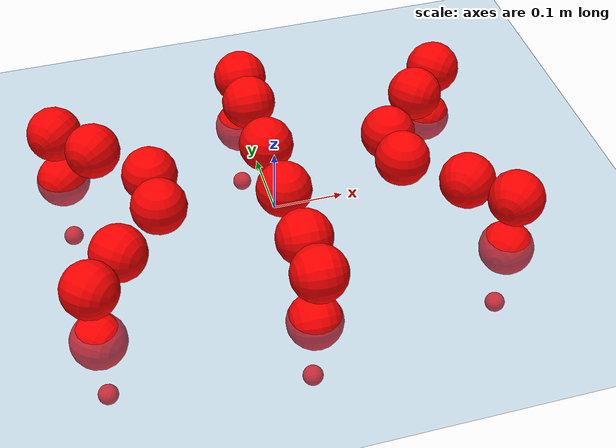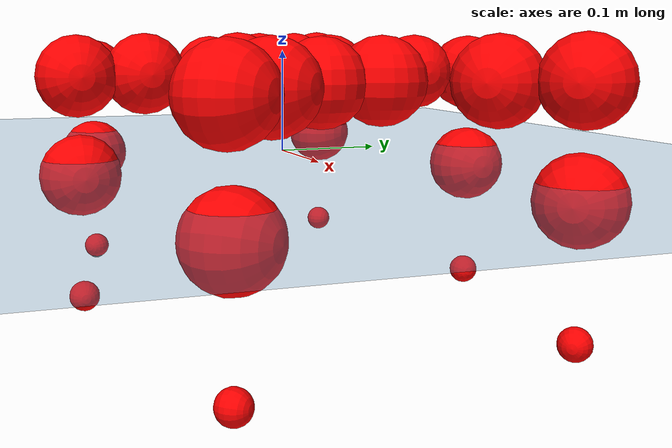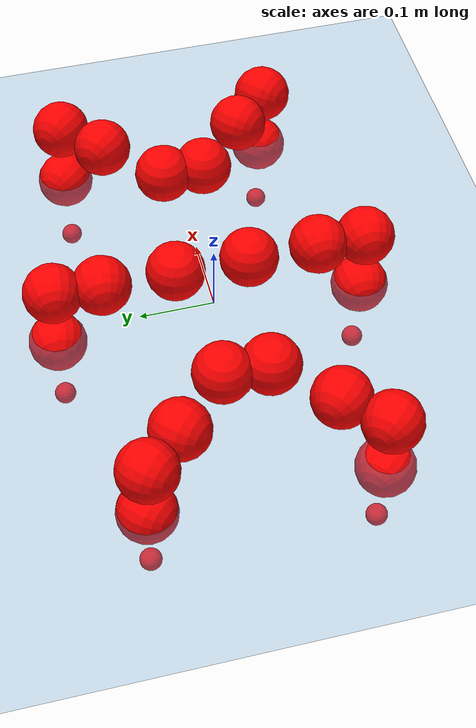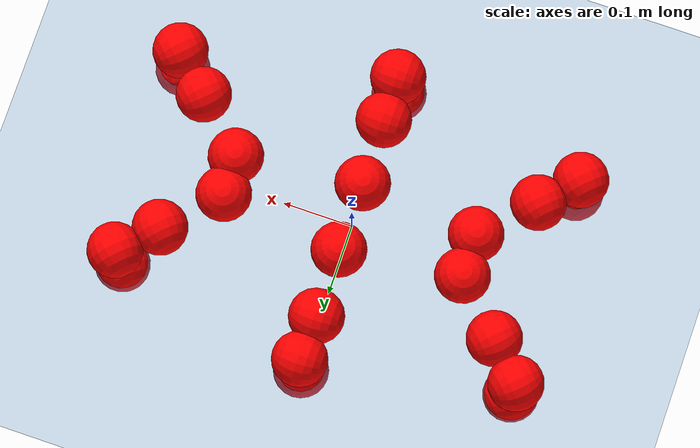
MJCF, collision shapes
<mujoco model="Golem">
  <compiler angle="radian" assetdir="assets" balanceinertia="true" inertiafromgeom="false"/>

  <option timestep="0.005" density="1.2" viscosity="2e-05"/>

  <size nkey="1"/>

  <visual>
    <quality shadowsize="8192"/>
    <map shadowclip="0.5"/>
  </visual>

  <default>
    <default class="/">
      <joint armature="0.01" damping="0.01" frictionloss="0.01"/>
      <geom contype="0" conaffinity="0" group="1" solref="-1000 -80"/>
      <site size="0.01 0.005 0.005" group="5"/>
      <general forcelimited="true" biastype="affine" gainprm="25" biasprm="0 -25 -0.5"/>
      <default class="visual">
        <geom type="mesh" group="2"/>
      </default>
      <default class="collision">
        <geom group="3"/>
      </default>
      <default class="foot">
        <geom size="0.01 0 0" condim="6" group="4" priority="1" solimp="0.015 1 0.01"/>
      </default>
      <default class="reward_collision_sphere">
        <geom group="5" rgba="1 0 0 1"/>
      </default>
    </default>
  </default>

  <asset>
    <texture type="skybox" colorspace="auto" name="//unnamed_texture_0" builtin="gradient" rgb1="0.95 0.95 0.95" rgb2="0.95 0.95 0.95" width="100" height="600"/>
    <texture type="2d" colorspace="auto" name="texplane" builtin="checker" rgb1="0.345 0.575 0.748" rgb2="0.345 0.575 0.748" markrgb="1 1 1" width="512" height="512"/>
    <material name="MatPlane" class="/" texture="texplane" texuniform="true" texrepeat="2 2" specular="0.9"/>
    <mesh name="body" class="/" file="body.stl" scale="0.001 0.001 0.001"/>
    <mesh name="coxa" class="/" file="coxa.stl" scale="0.001 0.001 0.001"/>
    <mesh name="femur" class="/" file="femur.stl" scale="0.001 0.001 0.001"/>
    <mesh name="tibia" class="/" file="tibia.stl" scale="0.001 0.001 0.001"/>
    <mesh name="tarsus" class="/" file="tarsus.stl" scale="0.001 0.001 0.001"/>
  </asset>

  <worldbody>
    <geom name="floor" class="/" size="100 100 0.125" type="plane" group="0" material="MatPlane"/>
    <light name="toplight_shadow" class="/" pos="0 0 5" dir="0.0990148 0.0990148 -0.990148" type="directional" ambient="0.04 0.04 0.04" diffuse="0.55 0.55 0.55" specular="0.12 0.12 0.12"/>
    <light name="toplight_fill" class="/" pos="0 0 5" dir="0.0990148 0.0990148 -0.990148" type="directional" castshadow="false" ambient="0.04 0.04 0.04" diffuse="0.3 0.3 0.3" specular="0.08 0.08 0.08"/>
    <body name="trunk" pos="0.00270216 -0.000767685 0.00191182" quat="1 0.000344055 -0.000187481 -0.000151446">
      <inertial pos="-0.00203663 -0.00228781 0.00123247" quat="0.999997 0.000461426 -0.000378816 -0.00237636" mass="3.36827" diaginertia="0.0154623 0.0008948 0.0242387"/>
      <joint name="//unnamed_joint_0" type="free"/>
      <geom name="//unnamed_geom_1" class="/" pos="0 0 0.076015" quat="1 0 0 0" type="mesh" rgba="0.9 0.9 0.9 1" mesh="body"/>
      <site name="imu" class="/" pos="0.136908 -0.007916 0.11373" size="0.00967253"/>
      <camera name="track" class="/" pos="0 -1.23588 0" quat="0.707107 0.707107 0 0" mode="trackcom"/>
      <camera name="ego_camera" class="/" pos="0.142491 0 0.118773" quat="-0.5 -0.5 0.5 0.5"/>
      <body name="coxa_RR" pos="-0.193448 -0.0534494 0.074504" quat="0.382724 0.00013531 -9.4211e-05 -0.923863">
        <inertial pos="-4.92401e-06 0.0018926 -0.00134423" quat="0.999935 -0.00898862 0.00677178 0.0019878" mass="0.183886" diaginertia="0.0161884 0.000880251 0.0236189"/>
        <joint name="coxa_joint_RR" class="/" pos="0 0 0" axis="-0.000144136 0.00133311 -0.999999" stiffness="0.00148257" range="-3.12326 3.14702" armature="0.00972321" damping="0.0172296" frictionloss="0.00889261"/>
        <geom name="//unnamed_geom_2" class="/" type="mesh" rgba="0.2 0.2 0.2 1" mesh="coxa"/>
        <geom name="//unnamed_geom_3" class="reward_collision_sphere" size="0.0386901" pos="-0.0328825 0 0"/>
        <body name="femur_RR" pos="0.0629686 0.00197952 -0.000707042" quat="0.500175 -0.499988 0.500111 0.499725">
          <inertial pos="-0.000763136 0.00145024 -0.00225527" quat="0.999999 -0.00106758 0.000481324 -0.000509187" mass="0.180429" diaginertia="0.0157569 0.000893051 0.0234765"/>
          <joint name="femur_joint_RR" class="/" pos="0 0 0" axis="0.000152585 -0.000411093 -1" range="-3.16973 3.17975" armature="0.00905221" damping="0.00723834" frictionloss="0.00947604"/>
          <geom name="//unnamed_geom_4" class="/" type="mesh" rgba="0.9 0.9 0.9 1" mesh="femur"/>
          <geom name="//unnamed_geom_5" class="reward_collision_sphere" size="0.0386901"/>
          <body name="tibia_RR" pos="0.00337312 -0.0666276 0.00294851" quat="0.000372911 1 -0.000296058 -5.8101e-05">
            <inertial pos="0.00222181 -0.000995932 0.0022387" quat="0.999942 -0.00935396 0.00524652 0.000328171" mass="0.184502" diaginertia="0.0164362 0.000933262 0.023627"/>
            <joint name="tibia_joint_RR" class="/" pos="0 0 0" axis="0.00610638 -0.000183521 0.999981" range="-3.18854 3.19603" armature="0.00859355" damping="0.0155158" frictionloss="0.0105092"/>
            <geom name="//unnamed_geom_6" class="/" type="mesh" rgba="0.2 0.2 0.2 1" mesh="tibia"/>
            <geom name="//unnamed_geom_7" class="reward_collision_sphere" size="0.0386901"/>
            <body name="tarsus_RR" pos="0.0995033 0.000664855 -0.000929021" quat="1 -6.11606e-05 0.000116973 -0.000388997">
              <inertial pos="0.0671825 -0.00263188 -0.000136237" quat="0.502628 0.499709 0.490449 0.507067" mass="0.174791" diaginertia="0.0152393 0.000891406 0.0234356"/>
              <joint name="tarsus_joint_RR" class="/" pos="0 0 0" axis="-0.00275216 0.000227779 0.999996" range="-3.17242 3.12558" armature="0.0109994" damping="0.0423004" frictionloss="0.0107824"/>
              <geom name="//unnamed_geom_8" class="/" type="mesh" rgba="0.9 0.9 0.9 1" mesh="tarsus"/>
              <geom name="foot_1" class="foot" size="0.0104628" pos="0.122761 0 0" quat="0 -0.707107 0 0.707107"/>
              <geom name="//unnamed_geom_10" class="reward_collision_sphere" size="0.0386901"/>
              <geom name="//unnamed_geom_11" class="reward_collision_sphere" size="0.0145088" pos="0.117829 0 0"/>
              <site name="foot_1" class="foot" pos="0.122761 0 0" quat="0 -0.707107 0 0.707107" size="0.00967253"/>
            </body>
          </body>
        </body>
      </body>
      <body name="coxa_RM" pos="-0.00192827 -0.0791839 0.078065" quat="0.706978 -0.000118797 -0.000298288 -0.707235">
        <inertial pos="-0.000860349 0.00259266 0.00308793" quat="0.999996 0.000155862 0.00248835 -0.00148007" mass="0.183227" diaginertia="0.0163599 0.000934834 0.0243231"/>
        <joint name="coxa_joint_RM" class="/" pos="0 0 0" axis="0.00951417 -0.00237111 -0.999952" stiffness="0.00946348" range="-3.18345 3.08463" armature="0.010193" damping="0.0325933" frictionloss="0.0108625"/>
        <geom name="//unnamed_geom_12" class="/" type="mesh" rgba="0.2 0.2 0.2 1" mesh="coxa"/>
        <geom name="//unnamed_geom_13" class="reward_collision_sphere" size="0.0386901" pos="-0.0328825 0 0"/>
        <body name="femur_RM" pos="0.0600129 0.00132706 -0.000741162" quat="0.499462 -0.49976 0.500708 0.500069">
          <inertial pos="0.00095036 -0.00236747 0.00073511" quat="0.999923 -0.00788485 -0.00915496 0.00270014" mass="0.177794" diaginertia="0.0157992 0.000859946 0.0235467"/>
          <joint name="femur_joint_RM" class="/" pos="0 0 0" axis="-0.0116033 0.00595673 -0.999915" range="-3.08971 3.09332" armature="0.00913494" damping="0.00575604" frictionloss="0.00988552"/>
          <geom name="//unnamed_geom_14" class="/" type="mesh" rgba="0.9 0.9 0.9 1" mesh="femur"/>
          <geom name="//unnamed_geom_15" class="reward_collision_sphere" size="0.0386901"/>
          <body name="tibia_RM" pos="0.00132144 -0.0640631 0.000872792" quat="-0.000163813 1 6.88181e-05 -5.43515e-05">
            <inertial pos="0.00186657 0.000907615 0.00290417" quat="0.99995 -0.00361389 0.00227846 0.00898687" mass="0.179122" diaginertia="0.0159458 0.000900061 0.0241834"/>
            <joint name="tibia_joint_RM" class="/" pos="0 0 0" axis="0.00108244 -0.00131392 0.999999" range="-3.14268 3.18833" armature="0.0108682" damping="0.00141028" frictionloss="0.010637"/>
            <geom name="//unnamed_geom_16" class="/" type="mesh" rgba="0.2 0.2 0.2 1" mesh="tibia"/>
            <geom name="//unnamed_geom_17" class="reward_collision_sphere" size="0.0386901"/>
            <body name="tarsus_RM" pos="0.093769 -0.00112283 0.00316078" quat="0.999999 1.17289e-05 0.000697434 -0.0010119">
              <inertial pos="0.0658748 0.00175385 -0.00152487" quat="0.498043 0.501486 0.497789 0.502663" mass="0.18418" diaginertia="0.0166607 0.000896048 0.0240249"/>
              <joint name="tarsus_joint_RM" class="/" pos="0 0 0" axis="-0.00715281 -0.00756136 0.999946" range="-3.13763 3.15198" armature="0.0101066" damping="0.00582754" frictionloss="0.0102094"/>
              <geom name="//unnamed_geom_18" class="/" type="mesh" rgba="0.9 0.9 0.9 1" mesh="tarsus"/>
              <geom name="foot_2" class="foot" size="0.00949383" pos="0.122761 0 0" quat="0 -0.707107 0 0.707107"/>
              <geom name="//unnamed_geom_20" class="reward_collision_sphere" size="0.0386901"/>
              <geom name="//unnamed_geom_21" class="reward_collision_sphere" size="0.0145088" pos="0.117829 0 0"/>
              <site name="foot_2" class="foot" pos="0.122761 0 0" quat="0 -0.707107 0 0.707107" size="0.00967253"/>
            </body>
          </body>
        </body>
      </body>
      <body name="coxa_RF" pos="0.197599 -0.0502609 0.0744744" quat="0.923801 0.000436963 -0.000206368 -0.382873">
        <inertial pos="-5.14385e-05 0.000432033 0.000737914" quat="0.999975 0.00593757 0.00245351 -0.00299024" mass="0.182293" diaginertia="0.015452 0.000922191 0.0236874"/>
        <joint name="coxa_joint_RF" class="/" pos="0 0 0" axis="-0.000911169 0.000219593 -1" range="-3.17491 3.11398" armature="0.00840289" damping="0.0240464" frictionloss="0.00934138"/>
        <geom name="//unnamed_geom_22" class="/" type="mesh" rgba="0.2 0.2 0.2 1" mesh="coxa"/>
        <geom name="//unnamed_geom_23" class="reward_collision_sphere" size="0.0386901" pos="-0.0328825 0 0"/>
        <body name="femur_RF" pos="0.0636646 0.00238243 0.000607675" quat="0.499638 -0.500121 0.500202 0.500039">
          <inertial pos="-0.000369413 -0.00247415 -0.00053786" quat="0.999912 -0.00971311 -0.00667779 -0.00609305" mass="0.175164" diaginertia="0.0150483 0.000858582 0.0238905"/>
          <joint name="femur_joint_RF" class="/" pos="0 0 0" axis="-0.00409687 0.00115504 -0.999991" range="-3.14468 3.15713" armature="0.0102379" damping="0.00250607" frictionloss="0.0109927"/>
          <geom name="//unnamed_geom_24" class="/" type="mesh" rgba="0.9 0.9 0.9 1" mesh="femur"/>
          <geom name="//unnamed_geom_25" class="reward_collision_sphere" size="0.0386901"/>
          <body name="tibia_RF" pos="0.00113261 -0.0702419 0.00179774" quat="1.59809e-05 1 2.13842e-05 3.64573e-05">
            <inertial pos="0.00259618 0.00168318 -0.000869707" quat="0.999911 -0.00912591 0.0021216 -0.00948134" mass="0.179076" diaginertia="0.0151734 0.000870567 0.0235762"/>
            <joint name="tibia_joint_RF" class="/" pos="0 0 0" axis="-0.00143307 -0.00417951 0.99999" range="-3.12113 3.09152" armature="0.0108114" damping="0" frictionloss="0.0094879"/>
            <geom name="//unnamed_geom_26" class="/" type="mesh" rgba="0.2 0.2 0.2 1" mesh="tibia"/>
            <geom name="//unnamed_geom_27" class="reward_collision_sphere" size="0.0386901"/>
            <body name="tarsus_RF" pos="0.0995897 -0.00109794 -0.00261459" quat="1 -0.000448714 -1.86649e-05 -0.000518175">
              <inertial pos="0.0680044 0.00160589 -0.00235199" quat="0.499743 0.498925 0.50934 0.491837" mass="0.179825" diaginertia="0.0156106 0.000926133 0.0236971"/>
              <joint name="tarsus_joint_RF" class="/" pos="0 0 0" axis="0.00228758 -0.000513534 0.999997" stiffness="0.0178296" range="-3.16791 3.119" armature="0.00825188" damping="0.0116216" frictionloss="0.0094679"/>
              <geom name="//unnamed_geom_28" class="/" type="mesh" rgba="0.9 0.9 0.9 1" mesh="tarsus"/>
              <geom name="foot_3" class="foot" size="0.00865287" pos="0.122761 0 0" quat="0 -0.707107 0 0.707107"/>
              <geom name="//unnamed_geom_30" class="reward_collision_sphere" size="0.0386901"/>
              <geom name="//unnamed_geom_31" class="reward_collision_sphere" size="0.0145088" pos="0.117829 0 0"/>
              <site name="foot_3" class="foot" pos="0.122761 0 0" quat="0 -0.707107 0 0.707107" size="0.00967253"/>
            </body>
          </body>
        </body>
      </body>
      <body name="coxa_LR" pos="-0.19424 0.0535477 0.0779235" quat="0.382096 -0.00073778 0.000802988 0.924122">
        <inertial pos="-0.00256201 0.00187536 0.0038929" quat="0.999997 -0.00112214 0.00114601 -0.00161374" mass="0.186486" diaginertia="0.0165267 0.00090664 0.0239594"/>
        <joint name="coxa_joint_LR" class="/" pos="0 0 0" axis="0.00621502 0.0112918 -0.999917" range="-3.18824 3.10829" armature="0.010113" damping="0.0191498" frictionloss="0.00884816"/>
        <geom name="//unnamed_geom_32" class="/" type="mesh" rgba="0.2 0.2 0.2 1" mesh="coxa"/>
        <geom name="//unnamed_geom_33" class="reward_collision_sphere" size="0.0386901" pos="-0.0328825 0 0"/>
        <body name="femur_LR" pos="0.0630579 -0.000148693 0.000753895" quat="0.499952 -0.500314 0.499531 0.500203">
          <inertial pos="0.00283027 -0.000778696 0.00237648" quat="0.999974 -0.00342158 -0.00451268 -0.00452834" mass="0.172673" diaginertia="0.0154847 0.000884155 0.0223464"/>
          <joint name="femur_joint_LR" class="/" pos="0 0 0" axis="-0.0097506 -0.00824399 0.999918" stiffness="0.00075572" range="-3.18742 3.12984" armature="0.0105363" damping="0.0056209" frictionloss="0.00911293"/>
          <geom name="//unnamed_geom_34" class="/" type="mesh" rgba="0.9 0.9 0.9 1" mesh="femur"/>
          <geom name="//unnamed_geom_35" class="reward_collision_sphere" size="0.0386901"/>
          <body name="tibia_LR" pos="-0.00120977 -0.0673967 -0.0015237" quat="-0.000814866 0.999999 0.000657432 -0.000494244">
            <inertial pos="-0.000863898 0.00192115 0.00109391" quat="0.999953 -0.00534899 -0.00356597 -0.00726414" mass="0.179731" diaginertia="0.0159612 0.000920907 0.0234174"/>
            <joint name="tibia_joint_LR" class="/" pos="0 0 0" axis="-0.00334746 -0.00421582 -0.999986" range="-3.14811 3.17944" armature="0.00879996" damping="0.0311439" frictionloss="0.010529"/>
            <geom name="//unnamed_geom_36" class="/" type="mesh" rgba="0.2 0.2 0.2 1" mesh="tibia"/>
            <geom name="//unnamed_geom_37" class="reward_collision_sphere" size="0.0386901"/>
            <body name="tarsus_LR" pos="0.0930522 0.00200286 0.0032375" quat="1 6.18557e-05 9.27104e-05 1.88768e-05">
              <inertial pos="0.0642392 -0.000480683 -0.000595678" quat="0.504645 0.49751 0.49478 0.503001" mass="0.181365" diaginertia="0.016696 0.000933424 0.0250402"/>
              <joint name="tarsus_joint_LR" class="/" pos="0 0 0" axis="0.00412882 -0.00195473 -0.99999" stiffness="0.00744673" range="-3.13182 3.12489" armature="0.00947338" damping="0.0365413" frictionloss="0.0100084"/>
              <geom name="//unnamed_geom_38" class="/" type="mesh" rgba="0.9 0.9 0.9 1" mesh="tarsus"/>
              <geom name="foot_4" class="foot" size="0.0094614" pos="0.122761 0 0" quat="0.707107 0 -0.707107 0"/>
              <geom name="//unnamed_geom_40" class="reward_collision_sphere" size="0.0386901"/>
              <geom name="//unnamed_geom_41" class="reward_collision_sphere" size="0.0145088" pos="0.117829 0 0"/>
              <site name="foot_4" class="foot" pos="0.122761 0 0" quat="0.707107 0 -0.707107 0" size="0.00967253"/>
            </body>
          </body>
        </body>
      </body>
      <body name="coxa_LM" pos="-0.000831399 0.0832941 0.075934" quat="0.707701 0.000468857 0.000321439 0.706511">
        <inertial pos="0.000379306 -0.00272631 -0.000752292" quat="0.999998 0.00137356 -0.00121729 0.000182809" mass="0.18531" diaginertia="0.0159884 0.000928823 0.0235977"/>
        <joint name="coxa_joint_LM" class="/" pos="0 0 0" axis="0.00486132 -0.00338349 -0.999982" range="-3.13672 3.14703" armature="0.00904319" damping="0.0192066" frictionloss="0.0088926"/>
        <geom name="//unnamed_geom_42" class="/" type="mesh" rgba="0.2 0.2 0.2 1" mesh="coxa"/>
        <geom name="//unnamed_geom_43" class="reward_collision_sphere" size="0.0386901" pos="-0.0328825 0 0"/>
        <body name="femur_LM" pos="0.0633325 0.00120511 -0.000112233" quat="0.500157 -0.499917 0.499625 0.5003">
          <inertial pos="0.000677163 0.00217097 -0.000801617" quat="0.999989 -0.00382197 0.00215433 -0.00149271" mass="0.181266" diaginertia="0.0162913 0.000901279 0.0228008"/>
          <joint name="femur_joint_LM" class="/" pos="0 0 0" axis="0.0107604 -0.00507026 0.999929" range="-3.11362 3.12578" armature="0.0110369" damping="0.00243352" frictionloss="0.010364"/>
          <geom name="//unnamed_geom_44" class="/" type="mesh" rgba="0.9 0.9 0.9 1" mesh="femur"/>
          <geom name="//unnamed_geom_45" class="reward_collision_sphere" size="0.0386901"/>
          <body name="tibia_LM" pos="0.000922763 -0.0625617 -0.00240117" quat="4.92708e-05 1 0.000114973 -6.85323e-07">
            <inertial pos="-0.00174768 0.0013582 -0.00236837" quat="0.999921 0.00761995 -0.00529268 -0.00849266" mass="0.185716" diaginertia="0.0155636 0.000920075 0.0236287"/>
            <joint name="tibia_joint_LM" class="/" pos="0 0 0" axis="0.00314325 -0.000884039 -0.999995" stiffness="0.0106057" range="-3.12646 3.1534" armature="0.0110123" damping="0.00871734" frictionloss="0.00989486"/>
            <geom name="//unnamed_geom_46" class="/" type="mesh" rgba="0.2 0.2 0.2 1" mesh="tibia"/>
            <geom name="//unnamed_geom_47" class="reward_collision_sphere" size="0.0386901"/>
            <body name="tarsus_LM" pos="0.0987165 0.00175139 -0.000809095" quat="0.999999 0.00106692 -0.000697585 -0.000231162">
              <inertial pos="0.0629226 -0.00123115 -1.45524e-05" quat="0.50337 0.494612 0.497232 0.504716" mass="0.17555" diaginertia="0.0150379 0.000869296 0.0225288"/>
              <joint name="tarsus_joint_LM" class="/" pos="0 0 0" axis="0.000217069 0.0022418 -0.999997" stiffness="0.0157096" range="-3.13391 3.14925" armature="0.00836697" damping="0.0287682" frictionloss="0.00976798"/>
              <geom name="//unnamed_geom_48" class="/" type="mesh" rgba="0.9 0.9 0.9 1" mesh="tarsus"/>
              <geom name="foot_5" class="foot" size="0.00945212" pos="0.122761 0 0" quat="0.707107 0 -0.707107 0"/>
              <geom name="//unnamed_geom_50" class="reward_collision_sphere" size="0.0386901"/>
              <geom name="//unnamed_geom_51" class="reward_collision_sphere" size="0.0145088" pos="0.117829 0 0"/>
              <site name="foot_5" class="foot" pos="0.122761 0 0" quat="0.707107 0 -0.707107 0" size="0.00967253"/>
            </body>
          </body>
        </body>
      </body>
      <body name="coxa_LF" pos="0.195675 0.051719 0.0751738" quat="0.923961 0.000126058 0.00045954 0.382487">
        <inertial pos="0.00293536 -0.00237127 0.00243943" quat="0.999923 0.00330135 -0.00834635 0.00854016" mass="0.181194" diaginertia="0.0156589 0.000907222 0.0247861"/>
        <joint name="coxa_joint_LF" class="/" pos="0 0 0" axis="-0.0125865 -0.0165378 -0.999784" stiffness="0.0211982" range="-3.13825 3.13607" armature="0.00965315" damping="0.00876586" frictionloss="0.0106225"/>
        <geom name="//unnamed_geom_52" class="/" type="mesh" rgba="0.2 0.2 0.2 1" mesh="coxa"/>
        <geom name="//unnamed_geom_53" class="reward_collision_sphere" size="0.0386901" pos="-0.0328825 0 0"/>
        <body name="femur_LF" pos="0.0649961 0.00387486 0.00150251" quat="0.500493 -0.499602 0.499615 0.500289">
          <inertial pos="-0.000422082 -0.00312242 -0.00150947" quat="0.999907 0.0118765 0.00621477 0.00268018" mass="0.176956" diaginertia="0.0160261 0.000904453 0.0245787"/>
          <joint name="femur_joint_LF" class="/" pos="0 0 0" axis="0.00766597 -0.00102676 0.99997" range="-3.13054 3.08621" armature="0.0103455" damping="0.0189154" frictionloss="0.00954814"/>
          <geom name="//unnamed_geom_54" class="/" type="mesh" rgba="0.9 0.9 0.9 1" mesh="femur"/>
          <geom name="//unnamed_geom_55" class="reward_collision_sphere" size="0.0386901"/>
          <body name="tibia_LF" pos="-0.00148232 -0.0682151 0.00187073" quat="0.000628701 1 0.000424778 -0.000133197">
            <inertial pos="-0.00156473 0.00298341 0.00071747" quat="0.99999 -0.00281238 -5.66532e-05 -0.00360227" mass="0.181723" diaginertia="0.0158698 0.000892732 0.0236768"/>
            <joint name="tibia_joint_LF" class="/" pos="0 0 0" axis="0.000527644 0.000854366 -0.999999" stiffness="0.00387824" range="-3.19345 3.16512" armature="0.0102676" damping="0.00295178" frictionloss="0.0109784"/>
            <geom name="//unnamed_geom_56" class="/" type="mesh" rgba="0.2 0.2 0.2 1" mesh="tibia"/>
            <geom name="//unnamed_geom_57" class="reward_collision_sphere" size="0.0386901"/>
            <body name="tarsus_LF" pos="0.09493 -0.00162406 -0.00433352" quat="0.999999 -0.000318118 5.83329e-05 0.00142079">
              <inertial pos="0.06554 0.00343487 0.000498876" quat="0.499841 0.499286 0.5007 0.500173" mass="0.175672" diaginertia="0.0149614 0.00085554 0.0229015"/>
              <joint name="tarsus_joint_LF" class="/" pos="0 0 0" axis="0.0143875 0.00396874 -0.999889" stiffness="0.0263775" range="-3.11863 3.1108" armature="0.00969324" damping="0.00862969" frictionloss="0.00968408"/>
              <geom name="//unnamed_geom_58" class="/" type="mesh" rgba="0.9 0.9 0.9 1" mesh="tarsus"/>
              <geom name="foot_6" class="foot" size="0.00940357" pos="0.122761 0 0" quat="0.707107 0 -0.707107 0"/>
              <geom name="//unnamed_geom_60" class="reward_collision_sphere" size="0.0386901"/>
              <geom name="//unnamed_geom_61" class="reward_collision_sphere" size="0.0145088" pos="0.117829 0 0"/>
              <site name="foot_6" class="foot" pos="0.122761 0 0" quat="0.707107 0 -0.707107 0" size="0.00967253"/>
            </body>
          </body>
        </body>
      </body>
    </body>
  </worldbody>

  <contact>
    <pair class="/" geom1="floor" geom2="foot_1" name="//unnamed_contact_0"/>
    <pair class="/" geom1="floor" geom2="foot_2" name="//unnamed_contact_1"/>
    <pair class="/" geom1="floor" geom2="foot_3" name="//unnamed_contact_2"/>
    <pair class="/" geom1="floor" geom2="foot_4" name="//unnamed_contact_3"/>
    <pair class="/" geom1="floor" geom2="foot_5" name="//unnamed_contact_4"/>
    <pair class="/" geom1="floor" geom2="foot_6" name="//unnamed_contact_5"/>
  </contact>

  <actuator>
    <general name="coxa_joint_RR" class="/" joint="coxa_joint_RR" forcerange="-7.76333 7.76333" gainprm="23.2279" biasprm="0 -23.2279 -0.49379"/>
    <general name="femur_joint_RR" class="/" joint="femur_joint_RR" forcerange="-6.43954 6.43954" gainprm="23.2279" biasprm="0 -23.2279 -0.49379"/>
    <general name="tibia_joint_RR" class="/" joint="tibia_joint_RR" forcerange="-7.52777 7.52777" gainprm="23.2279" biasprm="0 -23.2279 -0.49379"/>
    <general name="tarsus_joint_RR" class="/" joint="tarsus_joint_RR" forcerange="-6.62791 6.62791" gainprm="23.2279" biasprm="0 -23.2279 -0.49379"/>
    <general name="coxa_joint_RM" class="/" joint="coxa_joint_RM" forcerange="-7.04254 7.04254" gainprm="23.2279" biasprm="0 -23.2279 -0.49379"/>
    <general name="femur_joint_RM" class="/" joint="femur_joint_RM" forcerange="-6.99211 6.99211" gainprm="23.2279" biasprm="0 -23.2279 -0.49379"/>
    <general name="tibia_joint_RM" class="/" joint="tibia_joint_RM" forcerange="-7.72344 7.72344" gainprm="23.2279" biasprm="0 -23.2279 -0.49379"/>
    <general name="tarsus_joint_RM" class="/" joint="tarsus_joint_RM" forcerange="-6.35571 6.35571" gainprm="23.2279" biasprm="0 -23.2279 -0.49379"/>
    <general name="coxa_joint_RF" class="/" joint="coxa_joint_RF" forcerange="-7.08722 7.08722" gainprm="23.2279" biasprm="0 -23.2279 -0.49379"/>
    <general name="femur_joint_RF" class="/" joint="femur_joint_RF" forcerange="-6.39621 6.39621" gainprm="23.2279" biasprm="0 -23.2279 -0.49379"/>
    <general name="tibia_joint_RF" class="/" joint="tibia_joint_RF" forcerange="-7.68567 7.68567" gainprm="23.2279" biasprm="0 -23.2279 -0.49379"/>
    <general name="tarsus_joint_RF" class="/" joint="tarsus_joint_RF" forcerange="-6.41703 6.41703" gainprm="23.2279" biasprm="0 -23.2279 -0.49379"/>
    <general name="coxa_joint_LR" class="/" joint="coxa_joint_LR" forcerange="-7.04832 7.04832" gainprm="23.2279" biasprm="0 -23.2279 -0.49379"/>
    <general name="femur_joint_LR" class="/" joint="femur_joint_LR" forcerange="-7.78406 7.78406" gainprm="23.2279" biasprm="0 -23.2279 -0.49379"/>
    <general name="tibia_joint_LR" class="/" joint="tibia_joint_LR" forcerange="-7.58059 7.58059" gainprm="23.2279" biasprm="0 -23.2279 -0.49379"/>
    <general name="tarsus_joint_LR" class="/" joint="tarsus_joint_LR" forcerange="-7.28566 7.28566" gainprm="23.2279" biasprm="0 -23.2279 -0.49379"/>
    <general name="coxa_joint_LM" class="/" joint="coxa_joint_LM" forcerange="-7.71474 7.71474" gainprm="23.2279" biasprm="0 -23.2279 -0.49379"/>
    <general name="femur_joint_LM" class="/" joint="femur_joint_LM" forcerange="-6.93849 6.93849" gainprm="23.2279" biasprm="0 -23.2279 -0.49379"/>
    <general name="tibia_joint_LM" class="/" joint="tibia_joint_LM" forcerange="-7.38974 7.38974" gainprm="23.2279" biasprm="0 -23.2279 -0.49379"/>
    <general name="tarsus_joint_LM" class="/" joint="tarsus_joint_LM" forcerange="-6.74361 6.74361" gainprm="23.2279" biasprm="0 -23.2279 -0.49379"/>
    <general name="coxa_joint_LF" class="/" joint="coxa_joint_LF" forcerange="-7.7852 7.7852" gainprm="23.2279" biasprm="0 -23.2279 -0.49379"/>
    <general name="femur_joint_LF" class="/" joint="femur_joint_LF" forcerange="-7.11733 7.11733" gainprm="23.2279" biasprm="0 -23.2279 -0.49379"/>
    <general name="tibia_joint_LF" class="/" joint="tibia_joint_LF" forcerange="-6.82402 6.82402" gainprm="23.2279" biasprm="0 -23.2279 -0.49379"/>
    <general name="tarsus_joint_LF" class="/" joint="tarsus_joint_LF" forcerange="-7.12615 7.12615" gainprm="23.2279" biasprm="0 -23.2279 -0.49379"/>
  </actuator>

  <sensor>
    <gyro site="imu" name="imu_angular_velocity"/>
    <velocimeter site="imu" name="imu_linear_velocity"/>
    <framelinvel objtype="site" objname="foot_1" name="foot_1_global_linear_velocity"/>
    <framelinvel objtype="site" objname="foot_2" name="foot_2_global_linear_velocity"/>
    <framelinvel objtype="site" objname="foot_3" name="foot_3_global_linear_velocity"/>
    <framelinvel objtype="site" objname="foot_4" name="foot_4_global_linear_velocity"/>
    <framelinvel objtype="site" objname="foot_5" name="foot_5_global_linear_velocity"/>
    <framelinvel objtype="site" objname="foot_6" name="foot_6_global_linear_velocity"/>
  </sensor>

  <keyframe>
    <key name="home" qpos="0 0 0.1457 1 0 0 0 0 0 0 0 0 0 0 0 0 0 0 0 0 0 0 0 0 0 0 0 0 0 0 0"/>
  </keyframe>
</mujoco>
